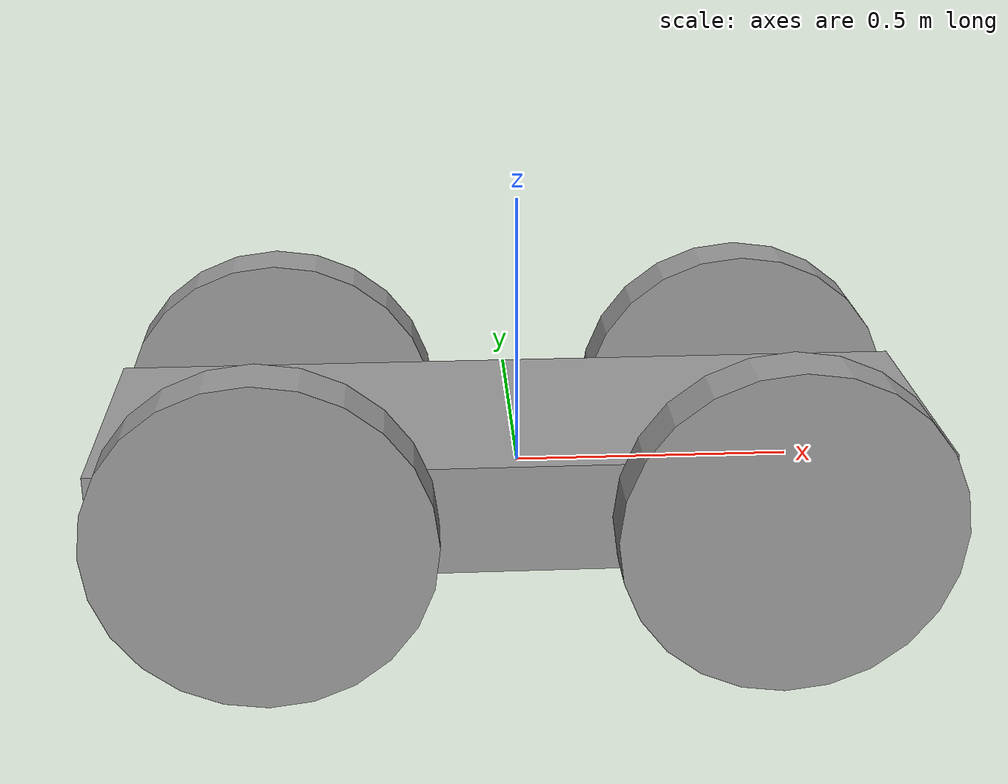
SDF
Skip to content
Search or jump to…

Pull requests
Issues
Marketplace
Explore

@parang17
Learn Git and GitHub without any code!
Using the Hello World guide, you’ll start a branch, write comments, and open a pull request.

timmyneutron
/
RoboticsND-Build-My-World
1
0
0
 Code
 Issues 0
 Pull requests 0 Actions
 Projects 0
 Wiki
 Security 0
 Insights
RoboticsND-Build-My-World/model/fourWheelRobot/model.sdf
@timmyneutron timmyneutron Make robot
c52db13 on Jan 31, 2019
626 lines (626 sloc)  18.8 KB

<?xml version='1.0'?>
<sdf version='1.6'>
  <model name='fourWheelRobot'>
    <link name='link_0_clone'>
      <pose frame=''>0 0 0 0 -0 0</pose>
      <inertial>
        <mass>1</mass>
        <inertia>
          <ixx>0.166667</ixx>
          <ixy>0</ixy>
          <ixz>0</ixz>
          <iyy>0.166667</iyy>
          <iyz>0</iyz>
          <izz>0.166667</izz>
        </inertia>
        <pose frame=''>0 0 0 0 -0 0</pose>
      </inertial>
      <self_collide>0</self_collide>
      <kinematic>0</kinematic>
      <gravity>1</gravity>
      <visual name='visual'>
        <pose frame=''>0 0 0 0 -0 0</pose>
        <geometry>
          <box>
            <size>1.5 0.5 0.2</size>
          </box>
        </geometry>
        <material>
          <lighting>1</lighting>
          <script>
            <uri>file://media/materials/scripts/gazebo.material</uri>
            <name>Gazebo/Grey</name>
          </script>
          <shader type='pixel'>
            <normal_map>__default__</normal_map>
          </shader>
          <ambient>0.3 0.3 0.3 1</ambient>
          <diffuse>0.7 0.7 0.7 1</diffuse>
          <specular>0.01 0.01 0.01 1</specular>
          <emissive>0 0 0 1</emissive>
        </material>
        <transparency>0</transparency>
        <cast_shadows>1</cast_shadows>
      </visual>
      <collision name='collision'>
        <laser_retro>0</laser_retro>
        <max_contacts>10</max_contacts>
        <pose frame=''>0 0 0 0 -0 0</pose>
        <geometry>
          <box>
            <size>1.5 0.5 0.2</size>
          </box>
        </geometry>
        <surface>
          <friction>
            <ode>
              <mu>1</mu>
              <mu2>1</mu2>
              <fdir1>0 0 0</fdir1>
              <slip1>0</slip1>
              <slip2>0</slip2>
            </ode>
            <torsional>
              <coefficient>1</coefficient>
              <patch_radius>0</patch_radius>
              <surface_radius>0</surface_radius>
              <use_patch_radius>1</use_patch_radius>
              <ode>
                <slip>0</slip>
              </ode>
            </torsional>
          </friction>
          <bounce>
            <restitution_coefficient>0</restitution_coefficient>
            <threshold>1e+06</threshold>
          </bounce>
          <contact>
            <collide_without_contact>0</collide_without_contact>
            <collide_without_contact_bitmask>1</collide_without_contact_bitmask>
            <collide_bitmask>1</collide_bitmask>
            <ode>
              <soft_cfm>0</soft_cfm>
              <soft_erp>0.2</soft_erp>
              <kp>1e+13</kp>
              <kd>1</kd>
              <max_vel>0.01</max_vel>
              <min_depth>0</min_depth>
            </ode>
            <bullet>
              <split_impulse>1</split_impulse>
              <split_impulse_penetration_threshold>-0.01</split_impulse_penetration_threshold>
              <soft_cfm>0</soft_cfm>
              <soft_erp>0.2</soft_erp>
              <kp>1e+13</kp>
              <kd>1</kd>
            </bullet>
          </contact>
        </surface>
      </collision>
    </link>
    <link name='link_1_clone'>
      <pose frame=''>0.45 -0.300029 0 1.5707 -0 0</pose>
      <inertial>
        <mass>1</mass>
        <inertia>
          <ixx>0.145833</ixx>
          <ixy>0</ixy>
          <ixz>0</ixz>
          <iyy>0.145833</iyy>
          <iyz>0</iyz>
          <izz>0.125</izz>
        </inertia>
        <pose frame=''>0 0 0 0 -0 0</pose>
      </inertial>
      <self_collide>0</self_collide>
      <kinematic>0</kinematic>
      <gravity>1</gravity>
      <visual name='visual'>
        <pose frame=''>0 0 0 0 -0 0</pose>
        <geometry>
          <cylinder>
            <radius>0.3</radius>
            <length>0.1</length>
          </cylinder>
        </geometry>
        <material>
          <lighting>1</lighting>
          <script>
            <uri>file://media/materials/scripts/gazebo.material</uri>
            <name>Gazebo/Grey</name>
          </script>
          <shader type='pixel'>
            <normal_map>__default__</normal_map>
          </shader>
          <ambient>0.3 0.3 0.3 1</ambient>
          <diffuse>0.7 0.7 0.7 1</diffuse>
          <specular>0.01 0.01 0.01 1</specular>
          <emissive>0 0 0 1</emissive>
        </material>
        <transparency>0</transparency>
        <cast_shadows>1</cast_shadows>
      </visual>
      <collision name='collision'>
        <laser_retro>0</laser_retro>
        <max_contacts>10</max_contacts>
        <pose frame=''>0 0 0 0 -0 0</pose>
        <geometry>
          <cylinder>
            <radius>0.3</radius>
            <length>0.1</length>
          </cylinder>
        </geometry>
        <surface>
          <friction>
            <ode>
              <mu>1</mu>
              <mu2>1</mu2>
              <fdir1>0 0 0</fdir1>
              <slip1>0</slip1>
              <slip2>0</slip2>
            </ode>
            <torsional>
              <coefficient>1</coefficient>
              <patch_radius>0</patch_radius>
              <surface_radius>0</surface_radius>
              <use_patch_radius>1</use_patch_radius>
              <ode>
                <slip>0</slip>
              </ode>
            </torsional>
          </friction>
          <bounce>
            <restitution_coefficient>0</restitution_coefficient>
            <threshold>1e+06</threshold>
          </bounce>
          <contact>
            <collide_without_contact>0</collide_without_contact>
            <collide_without_contact_bitmask>1</collide_without_contact_bitmask>
            <collide_bitmask>1</collide_bitmask>
            <ode>
              <soft_cfm>0</soft_cfm>
              <soft_erp>0.2</soft_erp>
              <kp>1e+13</kp>
              <kd>1</kd>
              <max_vel>0.01</max_vel>
              <min_depth>0</min_depth>
            </ode>
            <bullet>
              <split_impulse>1</split_impulse>
              <split_impulse_penetration_threshold>-0.01</split_impulse_penetration_threshold>
              <soft_cfm>0</soft_cfm>
              <soft_erp>0.2</soft_erp>
              <kp>1e+13</kp>
              <kd>1</kd>
            </bullet>
          </contact>
        </surface>
      </collision>
    </link>
    <link name='link_1_clone_clone'>
      <pose frame=''>-0.45 -0.300029 0 1.5707 -0 0</pose>
      <inertial>
        <mass>1</mass>
        <inertia>
          <ixx>0.145833</ixx>
          <ixy>0</ixy>
          <ixz>0</ixz>
          <iyy>0.145833</iyy>
          <iyz>0</iyz>
          <izz>0.125</izz>
        </inertia>
        <pose frame=''>0 0 0 0 -0 0</pose>
      </inertial>
      <self_collide>0</self_collide>
      <kinematic>0</kinematic>
      <visual name='visual'>
        <pose frame=''>0 0 0 0 -0 0</pose>
        <geometry>
          <cylinder>
            <radius>0.3</radius>
            <length>0.1</length>
          </cylinder>
        </geometry>
        <material>
          <lighting>1</lighting>
          <script>
            <uri>file://media/materials/scripts/gazebo.material</uri>
            <name>Gazebo/Grey</name>
          </script>
          <shader type='pixel'>
            <normal_map>__default__</normal_map>
          </shader>
          <ambient>0.3 0.3 0.3 1</ambient>
          <diffuse>0.7 0.7 0.7 1</diffuse>
          <specular>0.01 0.01 0.01 1</specular>
          <emissive>0 0 0 1</emissive>
        </material>
        <transparency>0</transparency>
        <cast_shadows>1</cast_shadows>
      </visual>
      <collision name='collision'>
        <laser_retro>0</laser_retro>
        <max_contacts>10</max_contacts>
        <pose frame=''>0 0 0 0 -0 0</pose>
        <geometry>
          <cylinder>
            <radius>0.3</radius>
            <length>0.1</length>
          </cylinder>
        </geometry>
        <surface>
          <friction>
            <ode>
              <mu>1</mu>
              <mu2>1</mu2>
              <fdir1>0 0 0</fdir1>
              <slip1>0</slip1>
              <slip2>0</slip2>
            </ode>
            <torsional>
              <coefficient>1</coefficient>
              <patch_radius>0</patch_radius>
              <surface_radius>0</surface_radius>
              <use_patch_radius>1</use_patch_radius>
              <ode>
                <slip>0</slip>
              </ode>
            </torsional>
          </friction>
          <bounce>
            <restitution_coefficient>0</restitution_coefficient>
            <threshold>1e+06</threshold>
          </bounce>
          <contact>
            <collide_without_contact>0</collide_without_contact>
            <collide_without_contact_bitmask>1</collide_without_contact_bitmask>
            <collide_bitmask>1</collide_bitmask>
            <ode>
              <soft_cfm>0</soft_cfm>
              <soft_erp>0.2</soft_erp>
              <kp>1e+13</kp>
              <kd>1</kd>
              <max_vel>0.01</max_vel>
              <min_depth>0</min_depth>
            </ode>
            <bullet>
              <split_impulse>1</split_impulse>
              <split_impulse_penetration_threshold>-0.01</split_impulse_penetration_threshold>
              <soft_cfm>0</soft_cfm>
              <soft_erp>0.2</soft_erp>
              <kp>1e+13</kp>
              <kd>1</kd>
            </bullet>
          </contact>
        </surface>
      </collision>
    </link>
    <link name='link_1_clone_clone_0'>
      <pose frame=''>-0.45 0.300029 0 1.5707 -0 0</pose>
      <inertial>
        <mass>1</mass>
        <inertia>
          <ixx>0.145833</ixx>
          <ixy>0</ixy>
          <ixz>0</ixz>
          <iyy>0.145833</iyy>
          <iyz>0</iyz>
          <izz>0.125</izz>
        </inertia>
        <pose frame=''>0 0 0 0 -0 0</pose>
      </inertial>
      <self_collide>0</self_collide>
      <kinematic>0</kinematic>
      <visual name='visual'>
        <pose frame=''>0 0 0 0 -0 0</pose>
        <geometry>
          <cylinder>
            <radius>0.3</radius>
            <length>0.1</length>
          </cylinder>
        </geometry>
        <material>
          <lighting>1</lighting>
          <script>
            <uri>file://media/materials/scripts/gazebo.material</uri>
            <name>Gazebo/Grey</name>
          </script>
          <shader type='pixel'>
            <normal_map>__default__</normal_map>
          </shader>
          <ambient>0.3 0.3 0.3 1</ambient>
          <diffuse>0.7 0.7 0.7 1</diffuse>
          <specular>0.01 0.01 0.01 1</specular>
          <emissive>0 0 0 1</emissive>
        </material>
        <transparency>0</transparency>
        <cast_shadows>1</cast_shadows>
      </visual>
      <collision name='collision'>
        <laser_retro>0</laser_retro>
        <max_contacts>10</max_contacts>
        <pose frame=''>0 0 0 0 -0 0</pose>
        <geometry>
          <cylinder>
            <radius>0.3</radius>
            <length>0.1</length>
          </cylinder>
        </geometry>
        <surface>
          <friction>
            <ode>
              <mu>1</mu>
              <mu2>1</mu2>
              <fdir1>0 0 0</fdir1>
              <slip1>0</slip1>
              <slip2>0</slip2>
            </ode>
            <torsional>
              <coefficient>1</coefficient>
              <patch_radius>0</patch_radius>
              <surface_radius>0</surface_radius>
              <use_patch_radius>1</use_patch_radius>
              <ode>
                <slip>0</slip>
              </ode>
            </torsional>
          </friction>
          <bounce>
            <restitution_coefficient>0</restitution_coefficient>
            <threshold>1e+06</threshold>
          </bounce>
          <contact>
            <collide_without_contact>0</collide_without_contact>
            <collide_without_contact_bitmask>1</collide_without_contact_bitmask>
            <collide_bitmask>1</collide_bitmask>
            <ode>
              <soft_cfm>0</soft_cfm>
              <soft_erp>0.2</soft_erp>
              <kp>1e+13</kp>
              <kd>1</kd>
              <max_vel>0.01</max_vel>
              <min_depth>0</min_depth>
            </ode>
            <bullet>
              <split_impulse>1</split_impulse>
              <split_impulse_penetration_threshold>-0.01</split_impulse_penetration_threshold>
              <soft_cfm>0</soft_cfm>
              <soft_erp>0.2</soft_erp>
              <kp>1e+13</kp>
              <kd>1</kd>
            </bullet>
          </contact>
        </surface>
      </collision>
    </link>
    <link name='link_1_clone_clone_1'>
      <pose frame=''>0.45 0.300029 0 1.5707 -0 0</pose>
      <inertial>
        <mass>1</mass>
        <inertia>
          <ixx>0.145833</ixx>
          <ixy>0</ixy>
          <ixz>0</ixz>
          <iyy>0.145833</iyy>
          <iyz>0</iyz>
          <izz>0.125</izz>
        </inertia>
        <pose frame=''>0 0 0 0 -0 0</pose>
      </inertial>
      <self_collide>0</self_collide>
      <kinematic>0</kinematic>
      <visual name='visual'>
        <pose frame=''>0 0 0 0 -0 0</pose>
        <geometry>
          <cylinder>
            <radius>0.3</radius>
            <length>0.1</length>
          </cylinder>
        </geometry>
        <material>
          <lighting>1</lighting>
          <script>
            <uri>file://media/materials/scripts/gazebo.material</uri>
            <name>Gazebo/Grey</name>
          </script>
          <shader type='pixel'>
            <normal_map>__default__</normal_map>
          </shader>
          <ambient>0.3 0.3 0.3 1</ambient>
          <diffuse>0.7 0.7 0.7 1</diffuse>
          <specular>0.01 0.01 0.01 1</specular>
          <emissive>0 0 0 1</emissive>
        </material>
        <transparency>0</transparency>
        <cast_shadows>1</cast_shadows>
      </visual>
      <collision name='collision'>
        <laser_retro>0</laser_retro>
        <max_contacts>10</max_contacts>
        <pose frame=''>0 0 0 0 -0 0</pose>
        <geometry>
          <cylinder>
            <radius>0.3</radius>
            <length>0.1</length>
          </cylinder>
        </geometry>
        <surface>
          <friction>
            <ode>
              <mu>1</mu>
              <mu2>1</mu2>
              <fdir1>0 0 0</fdir1>
              <slip1>0</slip1>
              <slip2>0</slip2>
            </ode>
            <torsional>
              <coefficient>1</coefficient>
              <patch_radius>0</patch_radius>
              <surface_radius>0</surface_radius>
              <use_patch_radius>1</use_patch_radius>
              <ode>
                <slip>0</slip>
              </ode>
            </torsional>
          </friction>
          <bounce>
            <restitution_coefficient>0</restitution_coefficient>
            <threshold>1e+06</threshold>
          </bounce>
          <contact>
            <collide_without_contact>0</collide_without_contact>
            <collide_without_contact_bitmask>1</collide_without_contact_bitmask>
            <collide_bitmask>1</collide_bitmask>
            <ode>
              <soft_cfm>0</soft_cfm>
              <soft_erp>0.2</soft_erp>
              <kp>1e+13</kp>
              <kd>1</kd>
              <max_vel>0.01</max_vel>
              <min_depth>0</min_depth>
            </ode>
            <bullet>
              <split_impulse>1</split_impulse>
              <split_impulse_penetration_threshold>-0.01</split_impulse_penetration_threshold>
              <soft_cfm>0</soft_cfm>
              <soft_erp>0.2</soft_erp>
              <kp>1e+13</kp>
              <kd>1</kd>
            </bullet>
          </contact>
        </surface>
      </collision>
    </link>
    <joint name='link_0_clone_JOINT_0' type='revolute'>
      <parent>link_0_clone</parent>
      <child>link_1_clone_clone</child>
      <pose frame=''>0 0 0 0 -0 0</pose>
      <axis>
        <xyz>0 0 1</xyz>
        <use_parent_model_frame>0</use_parent_model_frame>
        <limit>
          <lower>-1.79769e+308</lower>
          <upper>1.79769e+308</upper>
          <effort>-1</effort>
          <velocity>-1</velocity>
        </limit>
        <dynamics>
          <spring_reference>0</spring_reference>
          <spring_stiffness>0</spring_stiffness>
          <damping>0</damping>
          <friction>0</friction>
        </dynamics>
      </axis>
      <physics>
        <ode>
          <limit>
            <cfm>0</cfm>
            <erp>0.2</erp>
          </limit>
          <suspension>
            <cfm>0</cfm>
            <erp>0.2</erp>
          </suspension>
        </ode>
      </physics>
    </joint>
    <joint name='link_0_clone_JOINT_1' type='revolute'>
      <parent>link_0_clone</parent>
      <child>link_1_clone</child>
      <pose frame=''>0 0 0 0 -0 0</pose>
      <axis>
        <xyz>0 0 1</xyz>
        <use_parent_model_frame>0</use_parent_model_frame>
        <limit>
          <lower>-1.79769e+308</lower>
          <upper>1.79769e+308</upper>
          <effort>-1</effort>
          <velocity>-1</velocity>
        </limit>
        <dynamics>
          <spring_reference>0</spring_reference>
          <spring_stiffness>0</spring_stiffness>
          <damping>0</damping>
        </dynamics>
      </axis>
      <physics>
        <ode>
          <limit>
            <cfm>0</cfm>
            <erp>0.2</erp>
          </limit>
          <suspension>
            <cfm>0</cfm>
            <erp>0.2</erp>
          </suspension>
        </ode>
      </physics>
    </joint>
    <joint name='link_0_clone_JOINT_2' type='revolute'>
      <parent>link_0_clone</parent>
      <child>link_1_clone_clone_0</child>
      <pose frame=''>0 0 0 0 -0 0</pose>
      <axis>
        <xyz>0 0 1</xyz>
        <use_parent_model_frame>0</use_parent_model_frame>
        <limit>
          <lower>-1.79769e+308</lower>
          <upper>1.79769e+308</upper>
          <effort>-1</effort>
          <velocity>-1</velocity>
        </limit>
        <dynamics>
          <spring_reference>0</spring_reference>
          <spring_stiffness>0</spring_stiffness>
          <damping>0</damping>
        </dynamics>
      </axis>
      <physics>
        <ode>
          <limit>
            <cfm>0</cfm>
            <erp>0.2</erp>
          </limit>
          <suspension>
            <cfm>0</cfm>
            <erp>0.2</erp>
          </suspension>
        </ode>
      </physics>
    </joint>
    <joint name='link_0_clone_JOINT_3' type='revolute'>
      <parent>link_0_clone</parent>
      <child>link_1_clone_clone_1</child>
      <pose frame=''>0 0 0 0 -0 0</pose>
      <axis>
        <xyz>0 0 1</xyz>
        <use_parent_model_frame>0</use_parent_model_frame>
        <limit>
          <lower>-1.79769e+308</lower>
          <upper>1.79769e+308</upper>
          <effort>-1</effort>
          <velocity>-1</velocity>
        </limit>
        <dynamics>
          <spring_reference>0</spring_reference>
          <spring_stiffness>0</spring_stiffness>
          <damping>0</damping>
        </dynamics>
      </axis>
      <physics>
        <ode>
          <limit>
            <cfm>0</cfm>
            <erp>0.2</erp>
          </limit>
          <suspension>
            <cfm>0</cfm>
            <erp>0.2</erp>
          </suspension>
        </ode>
      </physics>
    </joint>
    <static>0</static>
    <allow_auto_disable>1</allow_auto_disable>
  </model>
</sdf>
© 2020 GitHub, Inc.
Terms
Privacy
Security
Status
Help
Contact GitHub
Pricing
API
Training
Blog
About
